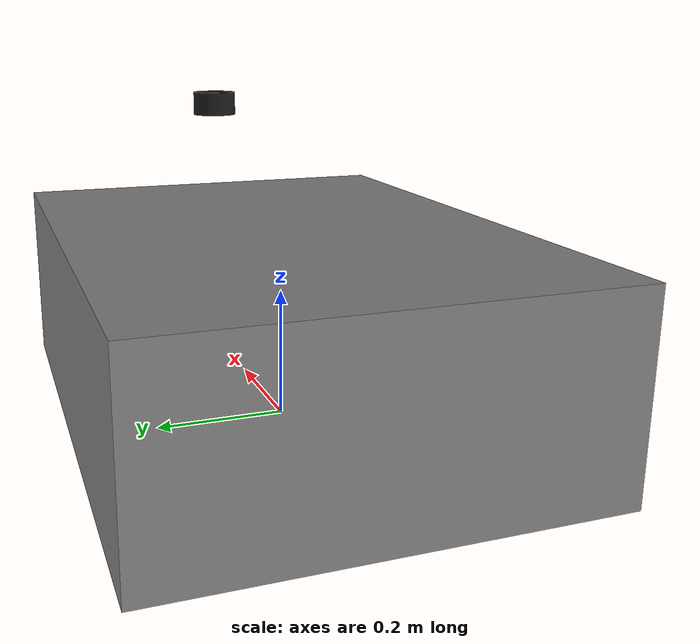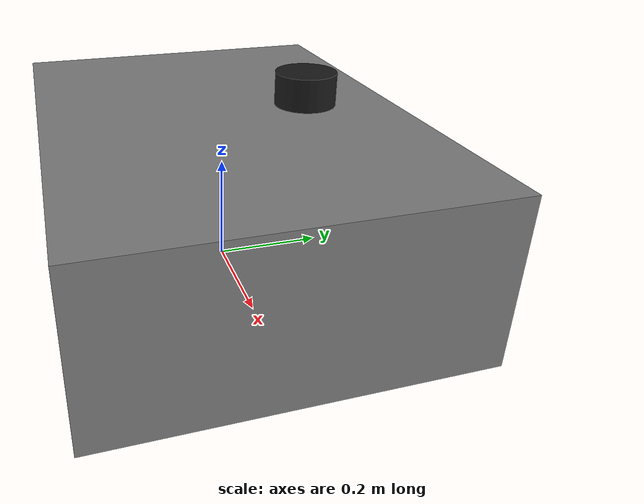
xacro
<?xml version="1.0"?>
<robot name="agv" xmlns:xacro="http://www.ros.org/wiki/xacro">

  <!-- ======================================================================
       FILL IN DIMENSIONS
       ====================================================================== -->
  <xacro:property name="ROVER_WIDTH"  value="0.66"/>   <!-- wheel centre to wheel centre -->
  <xacro:property name="ROVER_LENGTH" value="0.90"/>   <!-- front to back -->
  <xacro:property name="ROVER_HEIGHT" value="0.30"/>   <!-- ground to chassis top -->

  <!-- Derived values — do not edit -->
  <xacro:property name="BASE_X"  value="${ROVER_LENGTH / 2.0}"/>
  <xacro:property name="BASE_Y"  value="${ROVER_WIDTH  / 2.0}"/>
  <xacro:property name="BASE_Z"  value="${ROVER_HEIGHT / 2.0}"/>

  <!-- LiDAR offset — must match sensors.launch.py LIDAR_X and LIDAR_Z -->
  <xacro:property name="LIDAR_X" value="0.38"/>   <!-- 38 cm ahead of rover centre -->
  <xacro:property name="LIDAR_Z" value="0.46"/>   <!-- 46 cm above ground -->

  <!-- Camera offset — must match sensors.launch.py CAMERA_Z -->
  <xacro:property name="CAMERA_Z" value="0.155"/> <!-- 15.5 cm above ground -->

  <!-- ======================================================================
       LINKS
       ====================================================================== -->

  <!-- base_link: geometric centre of rover at ground level -->
  <link name="base_link">
    <visual>
      <geometry>
        <box size="${ROVER_LENGTH} ${ROVER_WIDTH} ${ROVER_HEIGHT}"/>
      </geometry>
      <origin xyz="0 0 ${BASE_Z}" rpy="0 0 0"/>
      <material name="grey">
        <color rgba="0.5 0.5 0.5 1.0"/>
      </material>
    </visual>
    <collision>
      <geometry>
        <box size="${ROVER_LENGTH} ${ROVER_WIDTH} ${ROVER_HEIGHT}"/>
      </geometry>
      <origin xyz="0 0 ${BASE_Z}" rpy="0 0 0"/>
    </collision>
    <inertial>
      <!-- Approximate — tune if using a physics simulator -->
      <mass value="10.0"/>
      <origin xyz="0 0 ${BASE_Z}" rpy="0 0 0"/>
      <inertia ixx="0.1" ixy="0.0" ixz="0.0"
               iyy="0.1" iyz="0.0"
               izz="0.1"/>
    </inertial>
  </link>

  <!-- laser: RPLiDAR A1 -->
  <link name="laser">
    <visual>
      <geometry>
        <cylinder radius="0.038" length="0.041"/>
      </geometry>
      <material name="black">
        <color rgba="0.1 0.1 0.1 1.0"/>
      </material>
    </visual>
    <collision>
      <geometry>
        <cylinder radius="0.038" length="0.041"/>
      </geometry>
    </collision>
    <inertial>
      <mass value="0.17"/>
      <inertia ixx="0.0001" ixy="0.0" ixz="0.0"
               iyy="0.0001" iyz="0.0"
               izz="0.0001"/>
    </inertial>
  </link>

  <!-- camera_link: Logitech webcam -->
  <link name="camera_link">
    <visual>
      <geometry>
        <box size="0.09 0.025 0.025"/>
      </geometry>
      <material name="blue">
        <color rgba="0.0 0.0 0.8 1.0"/>
      </material>
    </visual>
    <inertial>
      <mass value="0.1"/>
      <inertia ixx="0.00001" ixy="0.0" ixz="0.0"
               iyy="0.00001" iyz="0.0"
               izz="0.00001"/>
    </inertial>
  </link>

  <!-- ======================================================================
       JOINTS
       ====================================================================== -->

  <!-- base_link → laser (must match static TF in sensors.launch.py) -->
  <joint name="laser_joint" type="fixed">
    <parent link="base_link"/>
    <child  link="laser"/>
    <origin xyz="${LIDAR_X} 0.0 ${LIDAR_Z}" rpy="0 0 0"/>
  </joint>

  <!-- base_link → camera_link -->
  <joint name="camera_joint" type="fixed">
    <parent link="base_link"/>
    <child  link="camera_link"/>
    <origin xyz="${LIDAR_X} 0.0 ${CAMERA_Z}" rpy="0 0 0"/>
  </joint>

</robot>
